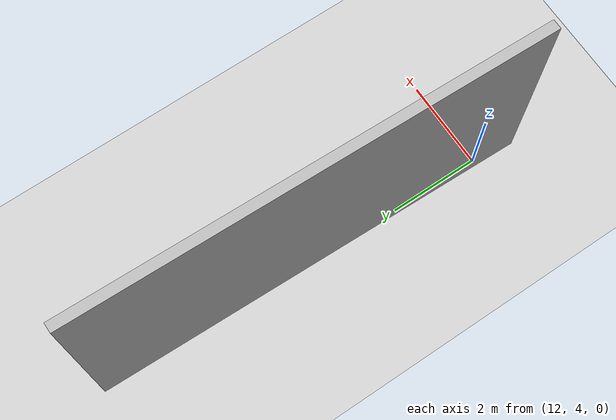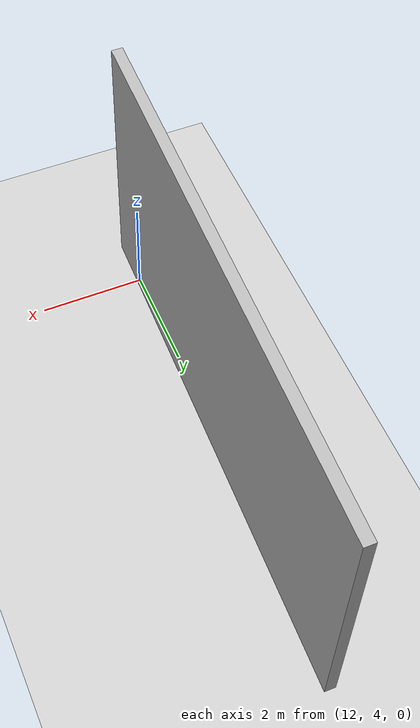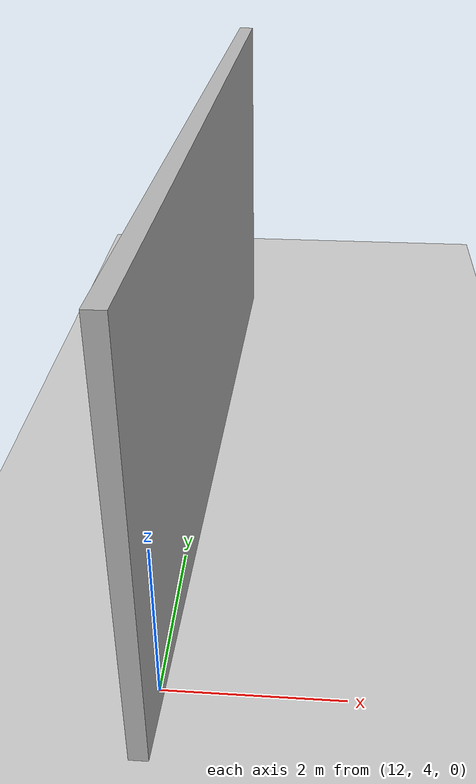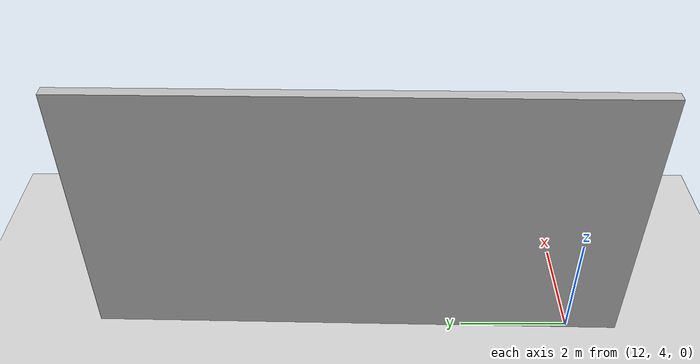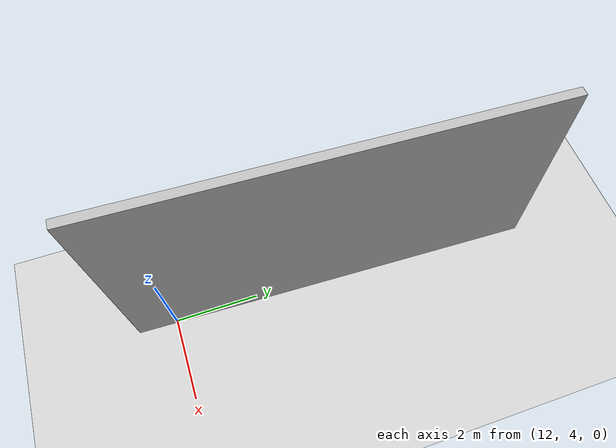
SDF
<sdf version="1.6">
 <world name="default">
  <model name="ground_plane">
   <static>1</static>
   <link name="link">
    <collision name="collision">
     <geometry><plane><normal>0 0 1</normal><size>100 100</size></plane></geometry>
     <surface><friction><ode><mu>100</mu><mu2>50</mu2></ode></friction></surface>
    </collision>
    <visual name="visual">
     <cast_shadows>0</cast_shadows>
     <geometry><plane><normal>0 0 1</normal><size>100 100</size></plane></geometry>
     <material>
      <script><uri>file://media/materials/scripts/gazebo.material</uri><name>Gazebo/Grey</name></script>
     </material>
    </visual>
   </link>
  </model>
  <model name="moon_wall_clone">
   <static>1</static>
   <link name="link">
    <visual name="visual">
     <geometry><mesh><uri>model://moon_wall/meshes/moon_wall.dae</uri></mesh></geometry>
    </visual>
   </link>
   <pose>11.9434 6.98537 0 0 -0 0</pose>
  </model>
 </world>
</sdf>
